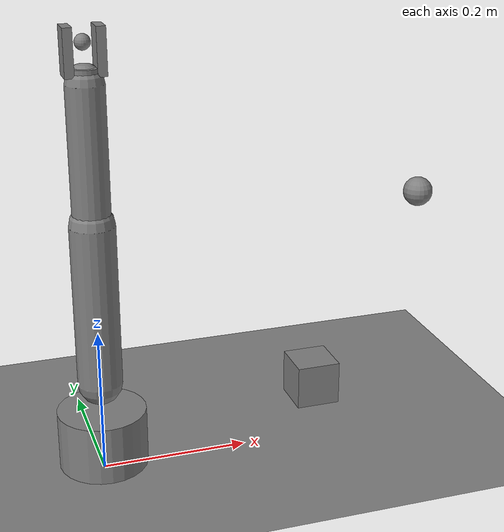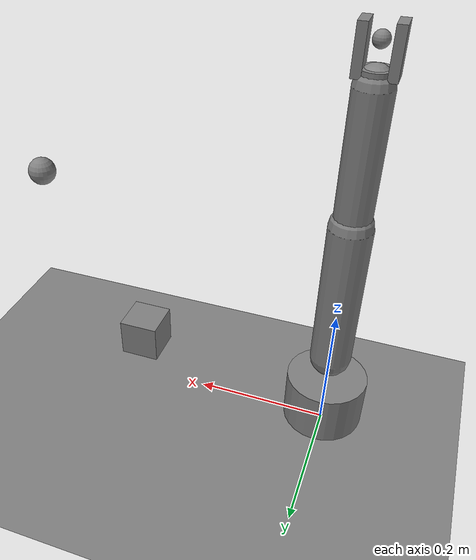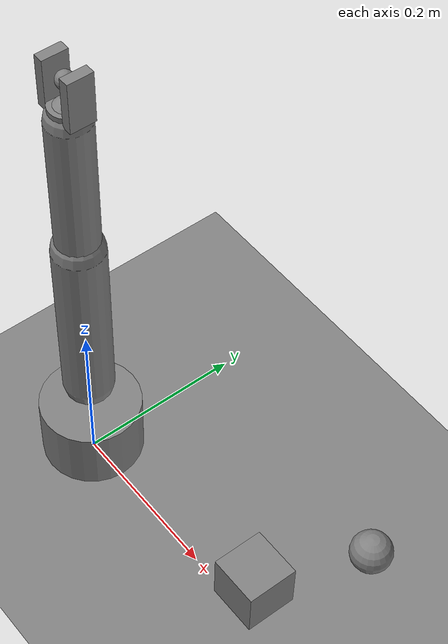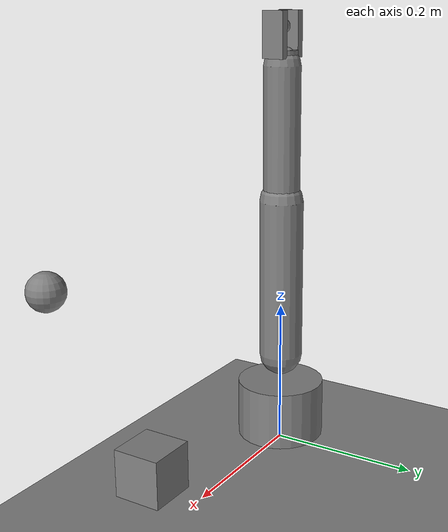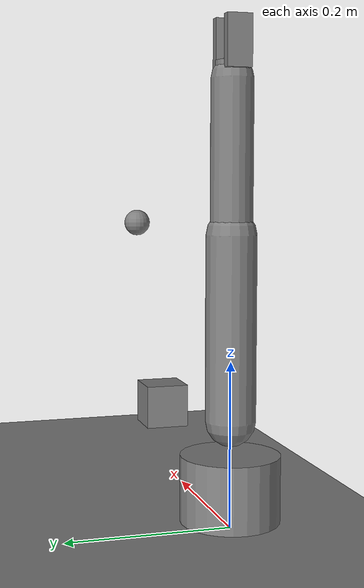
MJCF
<!-- dev-a: 4-DOF tabletop arm with parallel gripper and free payload.
     Development schema for spec 012. Structurally paired against dev-b
     (different topology/actuation) per spec.md §2. -->
<mujoco model="dev-a">
  <compiler angle="radian"/>
  <option timestep="0.002" gravity="0 0 -9.81"/>

  <contact>
    <exclude body1="forearm" body2="finger_left"/>
    <exclude body1="forearm" body2="finger_right"/>
  </contact>

  <worldbody>
    <geom name="table" type="plane" size="1 1 0.05"/>
    <site name="shelf_target" pos="0.45 0.0 0.35" size="0.02"/>

    <body name="base" pos="0 0 0.05">
      <geom type="cylinder" size="0.06 0.04" mass="2.0"/>
      <joint name="j_base_yaw" type="hinge" axis="0 0 1" range="-3.1 3.1"/>

      <body name="upper_arm" pos="0 0 0.08">
        <geom type="capsule" fromto="0 0 0  0 0 0.22" size="0.03" mass="1.2"/>
        <joint name="j_shoulder" type="hinge" axis="0 1 0" range="-1.9 1.9"/>

        <body name="forearm" pos="0 0 0.22">
          <geom type="capsule" fromto="0 0 0  0 0 0.18" size="0.025" mass="0.8"/>
          <joint name="j_elbow" type="hinge" axis="0 1 0" range="-2.4 2.4"/>

          <body name="wrist" pos="0 0 0.18">
            <geom type="cylinder" size="0.02 0.02" mass="0.3"/>
            <joint name="j_wrist" type="hinge" axis="0 0 1" range="-3.1 3.1"/>
            <site name="grip_center" pos="0 0 0.05" size="0.01"/>

            <body name="finger_left" pos="0.02 0 0.04">
              <geom name="pad_left" type="box" size="0.006 0.015 0.03" mass="0.05"/>
              <joint name="j_finger_left" type="slide" axis="1 0 0" range="0 0.04"/>
            </body>
            <body name="finger_right" pos="-0.02 0 0.04">
              <geom name="pad_right" type="box" size="0.006 0.015 0.03" mass="0.05"/>
              <joint name="j_finger_right" type="slide" axis="-1 0 0" range="0 0.04"/>
            </body>
          </body>
        </body>
      </body>
    </body>

    <body name="payload" pos="0.3 0 0.09">
      <freejoint name="j_payload_free"/>
      <geom name="payload_box" type="box" size="0.03 0.03 0.03" mass="0.5"/>
      <site name="payload_center" size="0.01"/>
    </body>
  </worldbody>

  <actuator>
    <motor name="m_base_yaw" joint="j_base_yaw" gear="40" ctrlrange="-1 1"/>
    <motor name="m_shoulder" joint="j_shoulder" gear="60" ctrlrange="-1 1"/>
    <motor name="m_elbow" joint="j_elbow" gear="40" ctrlrange="-1 1"/>
    <motor name="m_wrist" joint="j_wrist" gear="10" ctrlrange="-1 1"/>
    <motor name="m_finger_left" joint="j_finger_left" gear="8" ctrlrange="0 1"/>
    <motor name="m_finger_right" joint="j_finger_right" gear="8" ctrlrange="0 1"/>
  </actuator>

  <sensor>
    <touch name="s_touch_left" site="grip_center"/>
    <framepos name="s_payload_pos" objtype="site" objname="payload_center"/>
    <framepos name="s_target_pos" objtype="site" objname="shelf_target"/>
  </sensor>
</mujoco>
